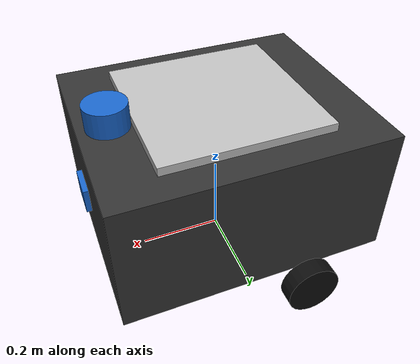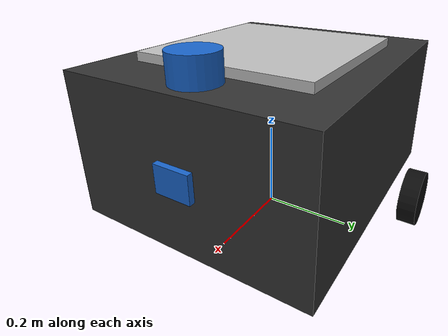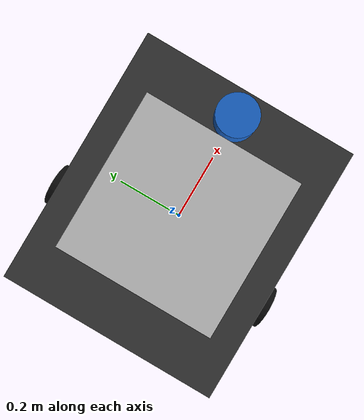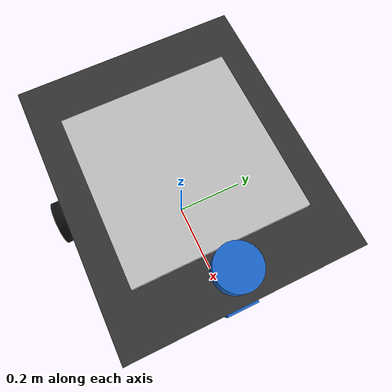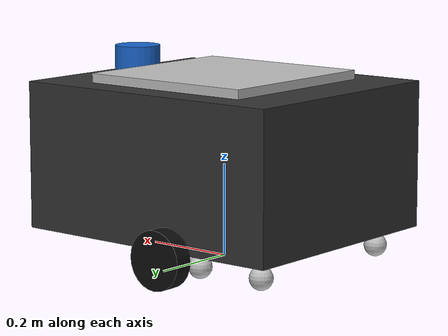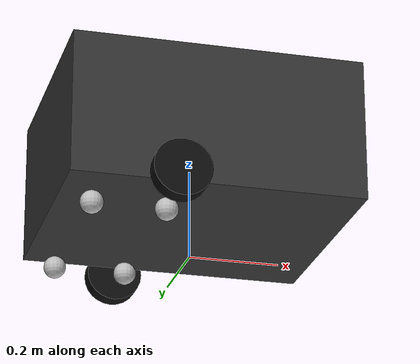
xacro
<?xml version="1.0"?>
<robot name="amr_robot" xmlns:xacro="http://www.ros.org/wiki/xacro">

  <xacro:include filename="$(find amr_description)/urdf/gazebo_control.xacro"/>

  <xacro:property name="base_length"    value="0.640"/>   <!-- X, front-back -->
  <xacro:property name="base_width"     value="0.540"/>   <!-- Y, side-side  -->
  <xacro:property name="base_height"    value="0.320"/>

  <xacro:property name="wheel_radius"   value="0.0625"/>
  <xacro:property name="wheel_width"    value="0.040"/>
  <xacro:property name="wheel_y"        value="0.325"/>   <!-- |Y| from centre → 650 mm total track width -->
  <xacro:property name="wheel_x"        value="0.100"/>   <!-- axle 22 cm from rear → appears behind centre after 180° frame flip -->

  <xacro:property name="caster_radius"  value="0.025"/>

  <!-- Scissor-lift platform -->
  <xacro:property name="lift_length"   value="0.400"/>
  <xacro:property name="lift_width"    value="0.400"/>
  <xacro:property name="lift_height"   value="0.020"/>   <!-- Z (thin plate) -->

  <!-- SLLIDAR C1 — cylinder approximation -->
  <xacro:property name="lidar_radius"  value="0.050"/>
  <xacro:property name="lidar_height"  value="0.060"/>

  <!-- Orbbec Astra Pro — box approximation -->
  <xacro:property name="cam_length"    value="0.025"/>   <!-- X, depth into chassis -->
  <xacro:property name="cam_width"     value="0.080"/>   <!-- Y, horizontal span -->
  <xacro:property name="cam_height"    value="0.060"/>   <!-- Z, vertical span -->

  <!-- base_link centre sits this high above the ground (= wheel touches floor) -->
  <xacro:property name="base_z"  value="${wheel_radius + base_height / 2.0}"/>

  <!-- Caster joint drop below base_link centre so sphere bottom = 0 m -->
  <xacro:property name="caster_z"
    value="${-(base_height / 2.0) - (wheel_radius - caster_radius)}"/>

  <!-- =====================================================================
       Materials
       ===================================================================== -->
  <material name="dark_grey">  <color rgba="0.20 0.20 0.20 1.0"/> </material>
  <material name="black">      <color rgba="0.05 0.05 0.05 1.0"/> </material>
  <material name="light_grey"> <color rgba="0.75 0.75 0.75 1.0"/> </material>
  <material name="blue">       <color rgba="0.10 0.40 0.80 1.0"/> </material>

  <xacro:macro name="drive_wheel" params="name y_sign">

    <link name="${name}_wheel_link">
      <visual>
        <origin xyz="0 0 0" rpy="${pi/2} 0 0"/>
        <geometry>
          <cylinder radius="${wheel_radius}" length="${wheel_width}"/>
        </geometry>
        <material name="black"/>
      </visual>
      <collision>
        <origin xyz="0 0 0" rpy="${pi/2} 0 0"/>
        <geometry>
          <cylinder radius="${wheel_radius}" length="${wheel_width}"/>
        </geometry>
      </collision>
      <!-- m=1 kg  cylinder axis=Y: Ixx=Izz=m/12*(3r²+l²)  Iyy=m/2*r² -->
      <inertial>
        <origin xyz="0 0 0" rpy="0 0 0"/>
        <mass value="1.0"/>
        <inertia ixx="0.001110" ixy="0" ixz="0"
                                 iyy="0.001953" iyz="0"
                                                 izz="0.001110"/>
      </inertial>
    </link>

    <!-- Wheel centre is at the bottom face of the base (same height as wheel_radius) -->
    <joint name="${name}_wheel_joint" type="continuous">
      <parent link="base_link"/>
      <child  link="${name}_wheel_link"/>
      <origin xyz="${wheel_x} ${y_sign * wheel_y} ${-(base_height / 2.0)}" rpy="0 0 0"/>
      <axis xyz="0 1 0"/>
    </joint>

  </xacro:macro>

  <!-- =====================================================================
       Macro: passive caster (sphere, fixed joint)
       ===================================================================== -->
  <xacro:macro name="caster" params="name x_pos y_pos">

    <link name="${name}_caster_link">
      <visual>
        <origin xyz="0 0 0" rpy="0 0 0"/>
        <geometry>
          <sphere radius="${caster_radius}"/>
        </geometry>
        <material name="light_grey"/>
      </visual>
      <collision>
        <origin xyz="0 0 0" rpy="0 0 0"/>
        <geometry>
          <sphere radius="${caster_radius}"/>
        </geometry>
      </collision>
      <!-- m=0.1 kg  sphere: Ixx=Iyy=Izz=2/5*m*r² -->
      <inertial>
        <origin xyz="0 0 0" rpy="0 0 0"/>
        <mass value="0.1"/>
        <inertia ixx="0.000025" ixy="0" ixz="0"
                                 iyy="0.000025" iyz="0"
                                                 izz="0.000025"/>
      </inertial>
    </link>

    <joint name="${name}_caster_joint" type="fixed">
      <parent link="base_link"/>
      <child  link="${name}_caster_link"/>
      <origin xyz="${x_pos} ${y_pos} ${caster_z}" rpy="0 0 0"/>
    </joint>

  </xacro:macro>

  <link name="base_footprint"/>

  <joint name="base_footprint_joint" type="fixed">
    <parent link="base_footprint"/>
    <child  link="base_link"/>
    <origin xyz="0 0 ${base_z}" rpy="0 0 ${pi}"/>
  </joint>

  <!-- =====================================================================
       base_link — chassis box (640 × 540 × 320 mm)
       ===================================================================== -->
  <link name="base_link">
    <visual>
      <origin xyz="0 0 0" rpy="0 0 0"/>
      <geometry>
        <box size="${base_length} ${base_width} ${base_height}"/>
      </geometry>
      <material name="dark_grey"/>
    </visual>
    <collision>
      <origin xyz="0 0 0" rpy="0 0 0"/>
      <geometry>
        <box size="${base_length} ${base_width} ${base_height}"/>
      </geometry>
    </collision>
    <!-- m=15 kg  box 0.640×0.540×0.320: Ixx=m/12*(w²+h²)  Iyy=m/12*(l²+h²)  Izz=m/12*(l²+w²) -->
    <inertial>
      <origin xyz="0 0 0" rpy="0 0 0"/>
      <mass value="15.0"/>
      <inertia ixx="0.492500" ixy="0" ixz="0"
                               iyy="0.640000" iyz="0"
                                               izz="0.876500"/>
    </inertial>
  </link>

  <!-- =====================================================================
       Drive wheels  (left = +Y, right = −Y)
       ===================================================================== -->
  <xacro:drive_wheel name="left"  y_sign=" 1"/>
  <xacro:drive_wheel name="right" y_sign="-1"/>

  <xacro:caster name="front_left"  x_pos=" 0.260" y_pos=" 0.200"/>
  <xacro:caster name="front_right" x_pos=" 0.260" y_pos="-0.200"/>
  <xacro:caster name="rear_left"   x_pos=" 0.100" y_pos=" 0.200"/>
  <xacro:caster name="rear_right"  x_pos=" 0.100" y_pos="-0.200"/>

  <link name="lift_link">
    <visual>
      <origin xyz="0 0 0" rpy="0 0 0"/>
      <geometry>
        <box size="${lift_length} ${lift_width} ${lift_height}"/>
      </geometry>
      <material name="light_grey"/>
    </visual>
    <collision>
      <origin xyz="0 0 0" rpy="0 0 0"/>
      <geometry>
        <box size="${lift_length} ${lift_width} ${lift_height}"/>
      </geometry>
    </collision>
    <!-- m=2 kg  box 0.400×0.400×0.020 -->
    <inertial>
      <origin xyz="0 0 0" rpy="0 0 0"/>
      <mass value="2.0"/>
      <inertia ixx="0.026733" ixy="0" ixz="0"
                               iyy="0.026733" iyz="0"
                                               izz="0.053333"/>
    </inertial>
  </link>

  <!-- PRESENTATION MODE: fixed joint — revert to type="prismatic" + axis + limit for live control -->
  <joint name="lift_joint" type="fixed">
    <parent link="base_link"/>
    <child  link="lift_link"/>
    <origin xyz="0.0 0 ${base_height / 2.0 + lift_height / 2.0}" rpy="0 0 0"/>
  </joint>

  <link name="laser">
    <visual>
      <origin xyz="0 0 0" rpy="0 0 0"/>
      <geometry>
        <cylinder radius="${lidar_radius}" length="${lidar_height}"/>
      </geometry>
      <material name="blue"/>
    </visual>
    <collision>
      <origin xyz="0 0 0" rpy="0 0 0"/>
      <geometry>
        <cylinder radius="${lidar_radius}" length="${lidar_height}"/>
      </geometry>
    </collision>
    <!-- m=0.2 kg  cylinder axis=Z: Ixx=Iyy=m/12*(3r²+h²)  Izz=m/2*r² -->
    <inertial>
      <origin xyz="0 0 0" rpy="0 0 0"/>
      <mass value="0.2"/>
      <inertia ixx="0.000185" ixy="0" ixz="0"
                               iyy="0.000185" iyz="0"
                                               izz="0.000250"/>
    </inertial>
  </link>

  <joint name="laser_joint" type="fixed">
    <parent link="base_link"/>
    <child  link="laser"/>
    <origin xyz="-0.25 0.0 ${base_height / 2.0 + lidar_height / 2.0}" rpy="0 0 0"/>
  </joint>

  <link name="camera_link">
    <visual>
      <origin xyz="0 0 0" rpy="0 0 0"/>
      <geometry>
        <box size="${cam_length} ${cam_width} ${cam_height}"/>
      </geometry>
      <material name="blue"/>
    </visual>
    <collision>
      <origin xyz="0 0 0" rpy="0 0 0"/>
      <geometry>
        <box size="${cam_length} ${cam_width} ${cam_height}"/>
      </geometry>
    </collision>
    <!-- m=0.2 kg  box 0.025×0.080×0.060 -->
    <inertial>
      <origin xyz="0 0 0" rpy="0 0 0"/>
      <mass value="0.2"/>
      <inertia ixx="0.000167" ixy="0" ixz="0"
                               iyy="0.000070" iyz="0"
                                               izz="0.000117"/>
    </inertial>
  </link>

  <joint name="camera_joint" type="fixed">
    <parent link="base_link"/>
    <child  link="camera_link"/>
    <origin xyz="-0.32 0 0" rpy="0 0 ${pi}"/>
  </joint>

</robot>
